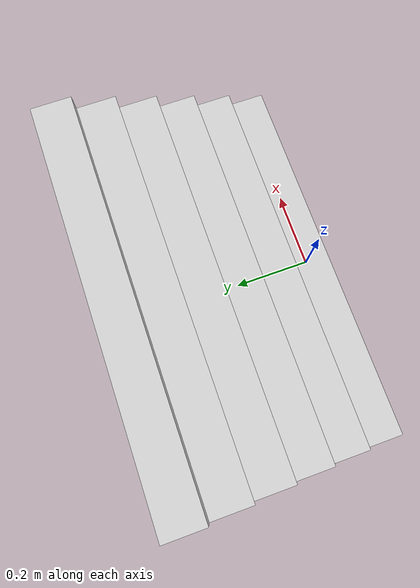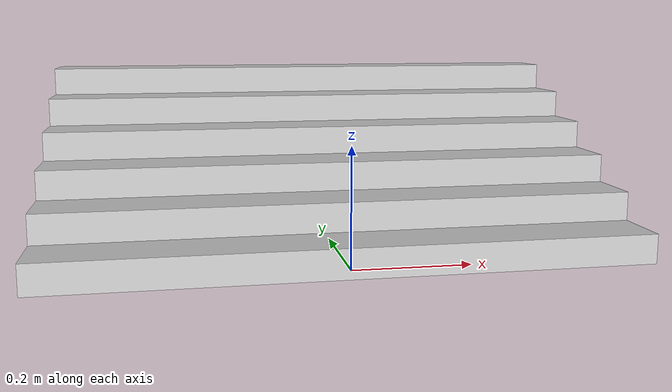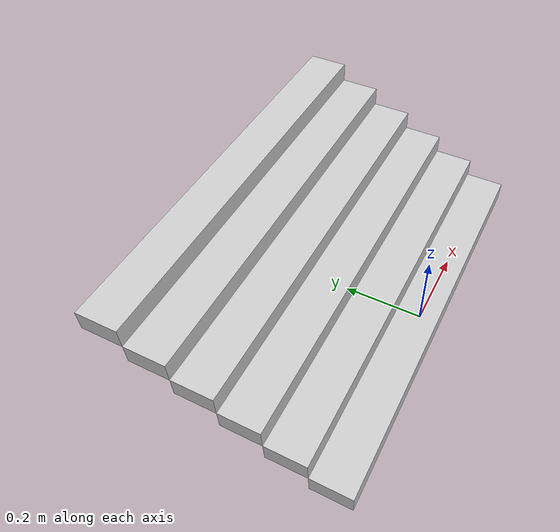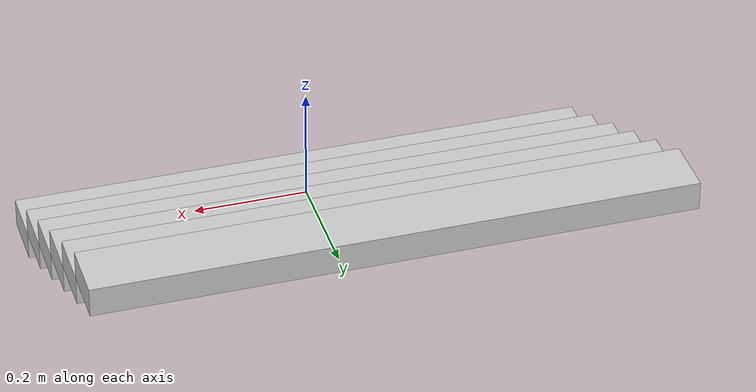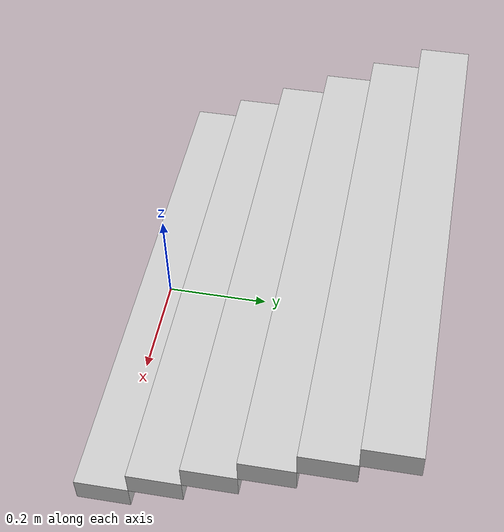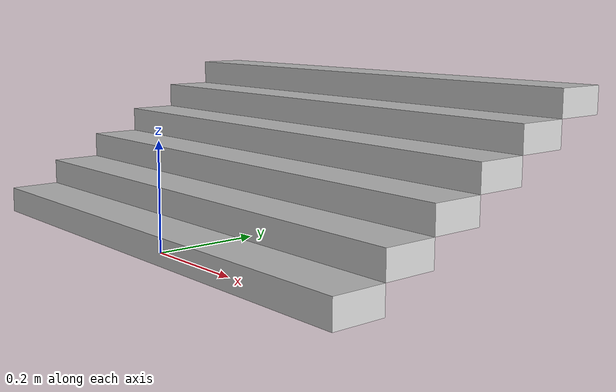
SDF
<?xml version="1.0"?>
<sdf version="1.7">
  <model name="stairs">
    <static>true</static>

    <link name="step_0">
      <pose>0 0.0 0.025 0 0 0</pose>
      <collision name="collision">
        <geometry>
          <box><size>1.0 0.1 0.05</size></box>
        </geometry>
        <surface>
          <friction>
            <ode>
              <mu>1.0</mu>
              <mu2>0.8</mu2>
            </ode>
          </friction>
        </surface>
      </collision>
      <visual name="visual">
        <geometry>
          <box><size>1.0 0.1 0.05</size></box>
        </geometry>
        <material>
          <ambient>0.7 0.7 0.7 1</ambient>
          <diffuse>0.8 0.8 0.8 1</diffuse>
        </material>
      </visual>
    </link>

    <link name="step_1">
      <pose>0 0.1 0.075 0 0 0</pose>
      <collision name="collision">
        <geometry>
          <box><size>1.0 0.1 0.05</size></box>
        </geometry>
        <surface>
          <friction>
            <ode><mu>1.0</mu><mu2>0.8</mu2></ode>
          </friction>
        </surface>
      </collision>
      <visual name="visual">
        <geometry>
          <box><size>1.0 0.1 0.05</size></box>
        </geometry>
        <material>
          <ambient>0.7 0.7 0.7 1</ambient>
          <diffuse>0.8 0.8 0.8 1</diffuse>
        </material>
      </visual>
    </link>

    <link name="step_2">
      <pose>0 0.2 0.125 0 0 0</pose>
      <collision name="collision">
        <geometry>
          <box><size>1.0 0.1 0.05</size></box>
        </geometry>
        <surface>
          <friction>
            <ode><mu>1.0</mu><mu2>0.8</mu2></ode>
          </friction>
        </surface>
      </collision>
      <visual name="visual">
        <geometry>
          <box><size>1.0 0.1 0.05</size></box>
        </geometry>
        <material>
          <ambient>0.7 0.7 0.7 1</ambient>
          <diffuse>0.8 0.8 0.8 1</diffuse>
        </material>
      </visual>
    </link>

    <link name="step_3">
      <pose>0 0.3 0.175 0 0 0</pose>
      <collision name="collision">
        <geometry>
          <box><size>1.0 0.1 0.05</size></box>
        </geometry>
        <surface>
          <friction>
            <ode><mu>1.0</mu><mu2>0.8</mu2></ode>
          </friction>
        </surface>
      </collision>
      <visual name="visual">
        <geometry>
          <box><size>1.0 0.1 0.05</size></box>
        </geometry>
        <material>
          <ambient>0.7 0.7 0.7 1</ambient>
          <diffuse>0.8 0.8 0.8 1</diffuse>
        </material>
      </visual>
    </link>

    <link name="step_4">
      <pose>0 0.4 0.225 0 0 0</pose>
      <collision name="collision">
        <geometry>
          <box><size>1.0 0.1 0.05</size></box>
        </geometry>
        <surface>
          <friction>
            <ode><mu>1.0</mu><mu2>0.8</mu2></ode>
          </friction>
        </surface>
      </collision>
      <visual name="visual">
        <geometry>
          <box><size>1.0 0.1 0.05</size></box>
        </geometry>
        <material>
          <ambient>0.7 0.7 0.7 1</ambient>
          <diffuse>0.8 0.8 0.8 1</diffuse>
        </material>
      </visual>
    </link>

    <link name="step_5">
      <pose>0 0.5 0.275 0 0 0</pose>
      <collision name="collision">
        <geometry>
          <box><size>1.0 0.1 0.05</size></box>
        </geometry>
        <surface>
          <friction>
            <ode><mu>1.0</mu><mu2>0.8</mu2></ode>
          </friction>
        </surface>
      </collision>
      <visual name="visual">
        <geometry>
          <box><size>1.0 0.1 0.05</size></box>
        </geometry>
        <material>
          <ambient>0.7 0.7 0.7 1</ambient>
          <diffuse>0.8 0.8 0.8 1</diffuse>
        </material>
      </visual>
    </link>

  </model>
</sdf>
